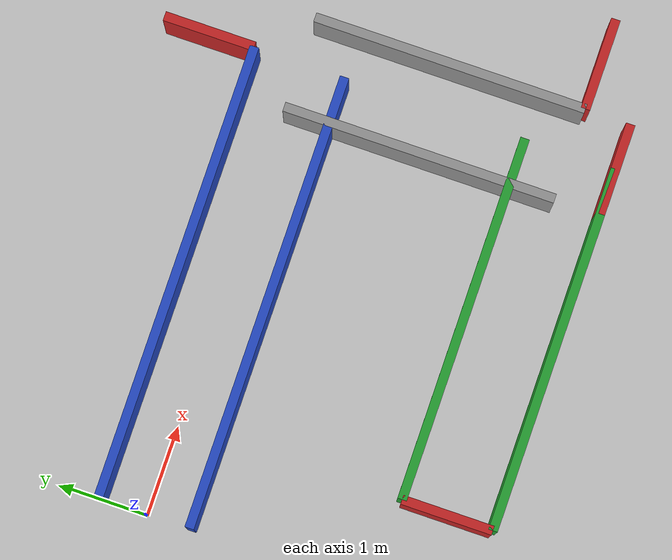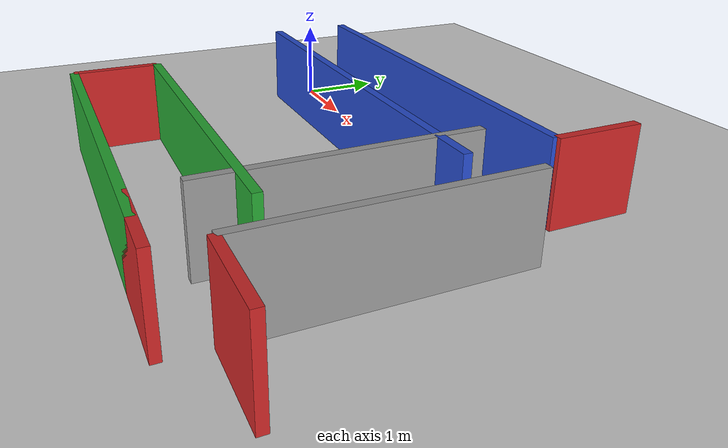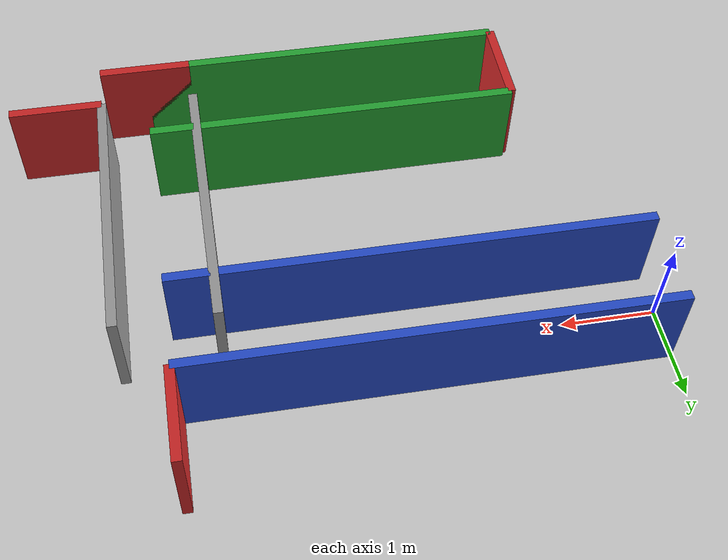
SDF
<?xml version="1.0" ?>
<sdf version="1.5">
  <world name="l_maze">

    <include>
      <uri>model://ground_plane</uri>
    </include>

    <include>
      <uri>model://sun</uri>
    </include>

    <!-- Corridor 1: Blue horizontal -->
    <model name="blue_north">
      <static>true</static>
      <link name="link">
        <pose>2.5 0.5 0.5 0 0 0</pose>
        <collision name="collision">
          <geometry><box><size>5 0.1 1</size></box></geometry>
        </collision>
        <visual name="visual">
          <geometry><box><size>5 0.1 1</size></box></geometry>
          <material>
            <script>
              <uri>file://media/materials/scripts/gazebo.material</uri>
              <name>Gazebo/Blue</name>
            </script>
          </material>
        </visual>
      </link>
    </model>

    <model name="blue_south">
      <static>true</static>
      <link name="link">
        <pose>2.5 -0.5 0.5 0 0 0</pose>
        <collision name="collision">
          <geometry><box><size>5 0.1 1</size></box></geometry>
        </collision>
        <visual name="visual">
          <geometry><box><size>5 0.1 1</size></box></geometry>
          <material>
            <script>
              <uri>file://media/materials/scripts/gazebo.material</uri>
              <name>Gazebo/Blue</name>
            </script>
          </material>
        </visual>
      </link>
    </model>

    <!-- J1 blocker: Red -->
    <model name="j1_red">
      <static>true</static>
      <link name="link">
        <pose>5 1 0.5 0 0 0</pose>
        <collision name="collision">
          <geometry><box><size>0.1 1 1</size></box></geometry>
        </collision>
        <visual name="visual">
          <geometry><box><size>0.1 1 1</size></box></geometry>
          <material>
            <script>
              <uri>file://media/materials/scripts/gazebo.material</uri>
              <name>Gazebo/Red</name>
            </script>
          </material>
        </visual>
      </link>
    </model>

    <!-- Corridor 2: Gray vertical -->
    <model name="gray_west">
      <static>true</static>
      <link name="link">
        <pose>4.5 -1.5 0.5 0 0 0</pose>
        <collision name="collision">
          <geometry><box><size>0.1 3 1</size></box></geometry>
        </collision>
        <visual name="visual">
          <geometry><box><size>0.1 3 1</size></box></geometry>
          <material>
            <script>
              <uri>file://media/materials/scripts/gazebo.material</uri>
              <name>Gazebo/Grey</name>
            </script>
          </material>
        </visual>
      </link>
    </model>

    <model name="gray_east">
      <static>true</static>
      <link name="link">
        <pose>5.5 -1.5 0.5 0 0 0</pose>
        <collision name="collision">
          <geometry><box><size>0.1 3 1</size></box></geometry>
        </collision>
        <visual name="visual">
          <geometry><box><size>0.1 3 1</size></box></geometry>
          <material>
            <script>
              <uri>file://media/materials/scripts/gazebo.material</uri>
              <name>Gazebo/Grey</name>
            </script>
          </material>
        </visual>
      </link>
    </model>

    <!-- J2 blockers: Red -->
    <model name="j2_red_east">
      <static>true</static>
      <link name="link">
        <pose>6 -3 0.5 0 0 0</pose>
        <collision name="collision">
          <geometry><box><size>1 0.1 1</size></box></geometry>
        </collision>
        <visual name="visual">
          <geometry><box><size>1 0.1 1</size></box></geometry>
          <material>
            <script>
              <uri>file://media/materials/scripts/gazebo.material</uri>
              <name>Gazebo/Red</name>
            </script>
          </material>
        </visual>
      </link>
    </model>

    <model name="j2_red_south">
      <static>true</static>
      <link name="link">
        <pose>5 -3.5 0.5 0 0 0</pose>
        <collision name="collision">
          <geometry><box><size>1 0.1 1</size></box></geometry>
        </collision>
        <visual name="visual">
          <geometry><box><size>1 0.1 1</size></box></geometry>
          <material>
            <script>
              <uri>file://media/materials/scripts/gazebo.material</uri>
              <name>Gazebo/Red</name>
            </script>
          </material>
        </visual>
      </link>
    </model>

    <!-- Corridor 3: Green horizontal -->
    <model name="green_north">
      <static>true</static>
      <link name="link">
        <pose>3 -2.5 0.5 0 0 0</pose>
        <collision name="collision">
          <geometry><box><size>4 0.1 1</size></box></geometry>
        </collision>
        <visual name="visual">
          <geometry><box><size>4 0.1 1</size></box></geometry>
          <material>
            <script>
              <uri>file://media/materials/scripts/gazebo.material</uri>
              <name>Gazebo/Green</name>
            </script>
          </material>
        </visual>
      </link>
    </model>

    <model name="green_south">
      <static>true</static>
      <link name="link">
        <pose>3 -3.5 0.5 0 0 0</pose>
        <collision name="collision">
          <geometry><box><size>4 0.1 1</size></box></geometry>
        </collision>
        <visual name="visual">
          <geometry><box><size>4 0.1 1</size></box></geometry>
          <material>
            <script>
              <uri>file://media/materials/scripts/gazebo.material</uri>
              <name>Gazebo/Green</name>
            </script>
          </material>
        </visual>
      </link>
    </model>

    <!-- Target end wall: Red -->
    <model name="target_red">
      <static>true</static>
      <link name="link">
        <pose>1 -3 0.5 0 0 0</pose>
        <collision name="collision">
          <geometry><box><size>0.1 1 1</size></box></geometry>
        </collision>
        <visual name="visual">
          <geometry><box><size>0.1 1 1</size></box></geometry>
          <material>
            <script>
              <uri>file://media/materials/scripts/gazebo.material</uri>
              <name>Gazebo/Red</name>
            </script>
          </material>
        </visual>
      </link>
    </model>

  </world>
</sdf>
